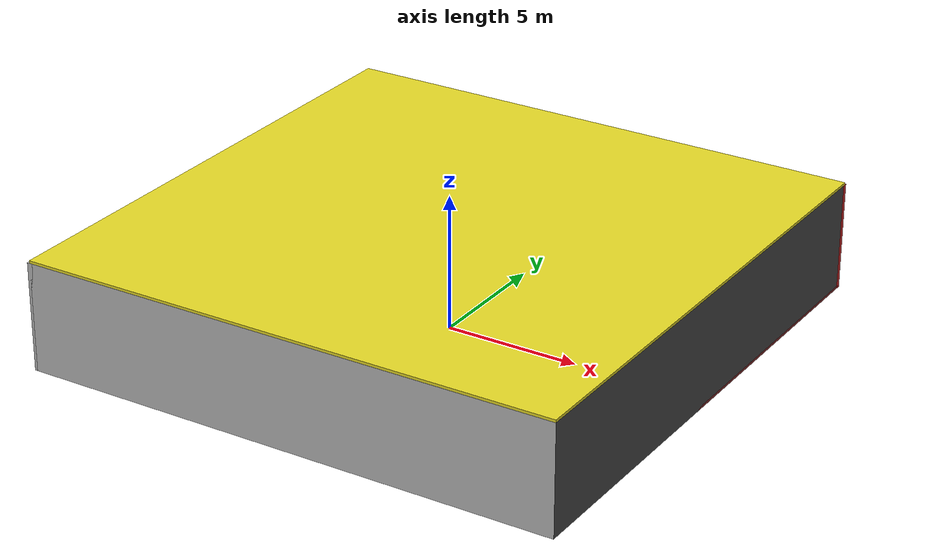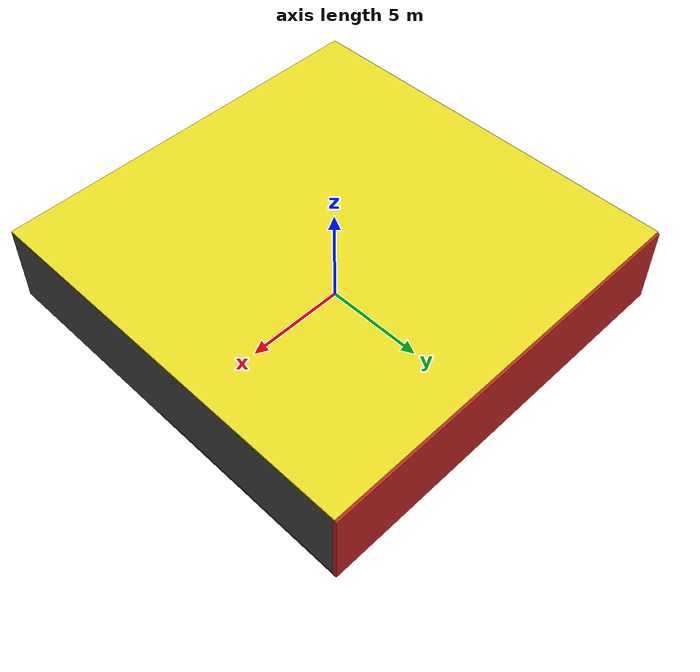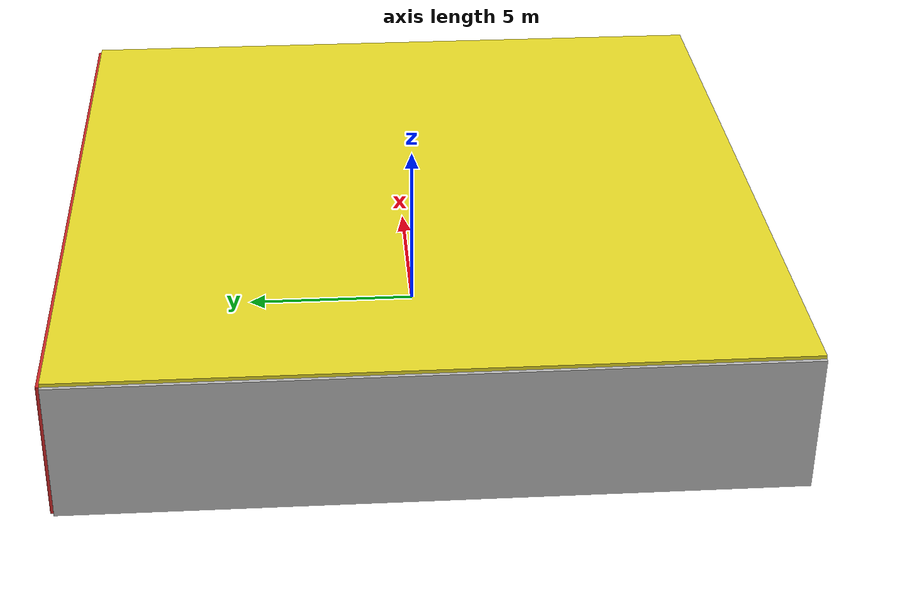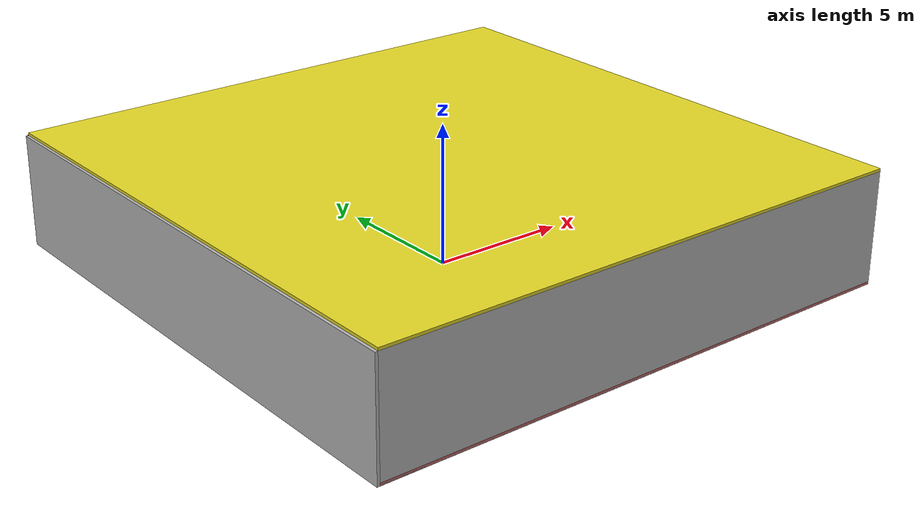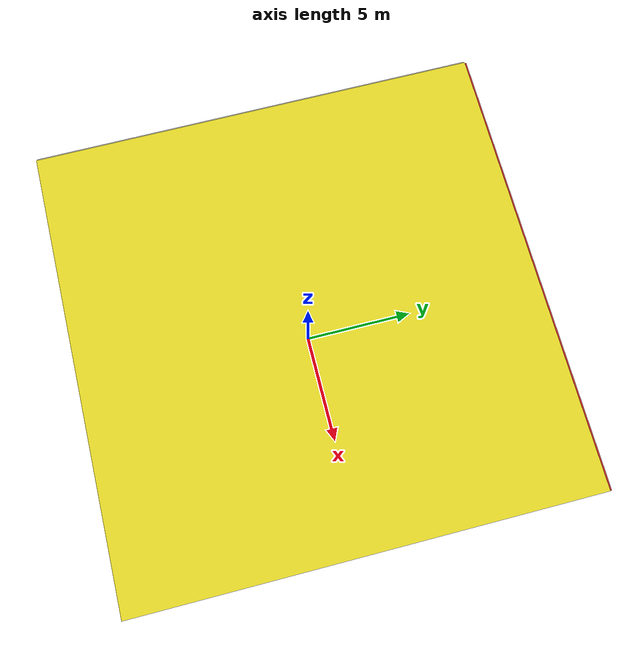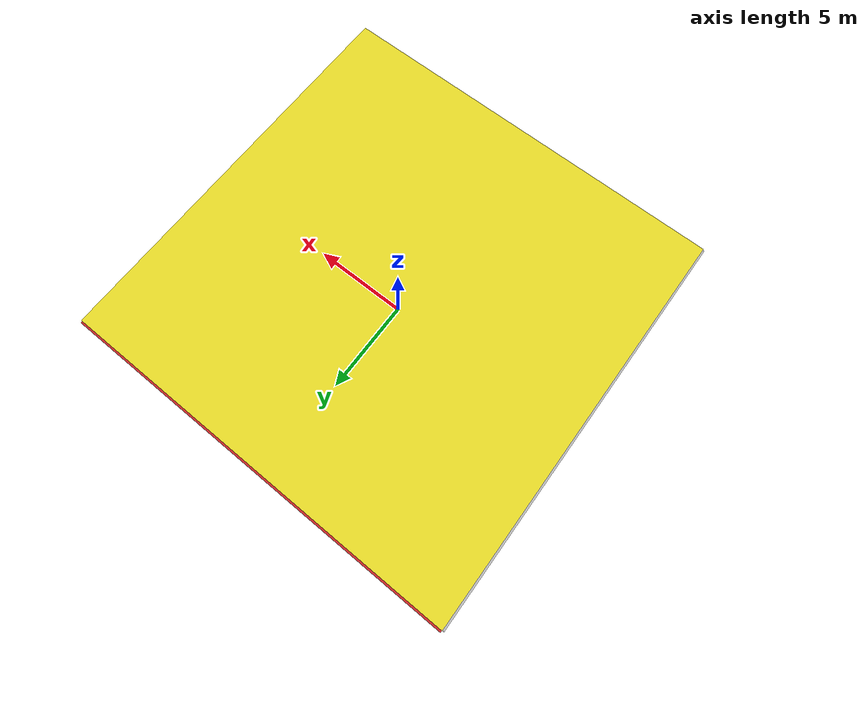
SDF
<sdf version="1.4">
 <world name="default">
  <physics type="ode">
   <max_step_size>0.001</max_step_size>
   <real_time_factor>1</real_time_factor>
   <real_time_update_rate>1000</real_time_update_rate>
   <gravity>0 0 -9.8</gravity>
  </physics>
  <scene><ambient>0.4 0.4 0.4 1</ambient><background>0.7 0.7 0.7 1</background><shadows>1</shadows></scene>
  <model name="Surrounding">
   <static>1</static>
   <link name="Ceiling">
    <collision name="Ceiling_Collision"><geometry><box><size>20 20 0.1</size></box></geometry></collision>
    <visual name="Ceiling_Visual">
     <geometry><box><size>20 20 0.1</size></box></geometry>
     <material>
      <script><uri>file://media/materials/scripts/gazebo.material</uri><name>Gazebo/Yellow</name></script>
     </material>
    </visual>
    <pose>0 0 4.05 0 0 0</pose>
   </link>
   <link name="Wall_South">
    <collision name="Wall_South_Collision">
     <geometry><box><size>20 0 4</size></box></geometry>
     <pose>0 0 2 0 -0 0</pose>
    </collision>
    <visual name="Wall_South_Visual">
     <pose>0 0 2 0 -0 0</pose>
     <geometry><box><size>20 0 4</size></box></geometry>
     <material>
      <script><uri>file://media/materials/scripts/gazebo.material</uri><name>Gazebo/LightOn</name></script>
     </material>
    </visual>
    <velocity_decay><linear>0</linear><angular>0</angular></velocity_decay>
    <pose>0 -10 0 0 -0 0</pose>
   </link>
   <link name="Wall_East">
    <collision name="Wall_21_Collision">
     <geometry><box><size>20 0 4</size></box></geometry>
     <pose>0 0 2 0 -0 0</pose>
    </collision>
    <visual name="Wall_21_Visual">
     <pose>0 0 2 0 -0 0</pose>
     <geometry><box><size>20 0 4</size></box></geometry>
     <material>
      <script><uri>file://media/materials/scripts/gazebo.material</uri><name>Gazebo/Road</name></script>
     </material>
    </visual>
    <velocity_decay><linear>0</linear><angular>0</angular></velocity_decay>
    <pose>10 0 0 0 -0 1.5708</pose>
   </link>
   <link name="Wall_North">
    <collision name="Wall_22_Collision">
     <geometry><box><size>20 0.2 4</size></box></geometry>
     <pose>0 0 2 0 -0 0</pose>
    </collision>
    <visual name="Wall_22_Visual">
     <pose>0 0 2 0 -0 0</pose>
     <geometry><box><size>20 0.2 4</size></box></geometry>
     <material>
      <script><uri>file://media/materials/scripts/gazebo.material</uri><name>Gazebo/RedBright</name></script>
     </material>
    </visual>
    <velocity_decay><linear>0</linear><angular>0</angular></velocity_decay>
    <pose>0 10 0 0 -0 0</pose>
   </link>
   <link name="Wall_West">
    <collision name="Wall_23_Collision">
     <geometry><box><size>20 0.2 4</size></box></geometry>
     <pose>0 0 2 0 -0 0</pose>
    </collision>
    <visual name="Wall_23_Visual">
     <pose>0 0 2 0 -0 0</pose>
     <geometry><box><size>20 0.2 4</size></box></geometry>
     <material>
      <script><uri>file://media/materials/scripts/gazebo.material</uri><name>Gazebo/CloudySky</name></script>
     </material>
    </visual>
    <velocity_decay><linear>0</linear><angular>0</angular></velocity_decay>
    <pose>-10 0 0 0 0 -1.5708</pose>
   </link>
   <link name="Ground_link">
    <collision name="collision">
     <pose>0 0 .05 0 -0 0</pose>
     <geometry><box><size>20 20 0.1</size></box></geometry>
    </collision>
    <visual name="visual">
     <pose>0 0 .05 0 -0 0</pose>
     <geometry><box><size>20 20 0.1</size></box></geometry>
     <material>
      <script><uri>file://media/materials/scripts/gazebo.material</uri><name>Gazebo/RedTransparent</name></script>
     </material>
    </visual>
   </link>
   <static>1</static>
  </model>
  <spherical_coordinates>
   <surface_model>EARTH_WGS84</surface_model>
   <latitude_deg>0</latitude_deg>
   <longitude_deg>0</longitude_deg>
   <elevation>0</elevation>
   <heading_deg>0</heading_deg>
  </spherical_coordinates>
  <light name="lightball_0" type="diffuse">
   <diffuse>0.8 0.8 0.8 1</diffuse>
   <specular>0.2 0.2 0.2 1</specular>
   <attenuation>
    <range>100</range>
    <constant>0.7</constant>
    <linear>0.01</linear>
    <quadratic>0.001</quadratic>
   </attenuation>
   <direction>-0.5 0.1 -0.9</direction>
   <pose>7.95205095112 -0.656566955282 3.18370761605 0 0 0</pose>
  </light>
  <light name="lightball_1" type="diffuse">
   <diffuse>0.8 0.8 0.8 1</diffuse>
   <specular>0.2 0.2 0.2 1</specular>
   <attenuation>
    <range>100</range>
    <constant>0.7</constant>
    <linear>0.01</linear>
    <quadratic>0.001</quadratic>
   </attenuation>
   <direction>-0.5 0.1 -0.9</direction>
   <pose>-8.91964605335 2.26561534436 1.17956944749 0 0 0</pose>
  </light>
  <light name="lightball_2" type="diffuse">
   <diffuse>0.8 0.8 0.8 1</diffuse>
   <specular>0.2 0.2 0.2 1</specular>
   <attenuation>
    <range>100</range>
    <constant>0.7</constant>
    <linear>0.01</linear>
    <quadratic>0.001</quadratic>
   </attenuation>
   <direction>-0.5 0.1 -0.9</direction>
   <pose>-7.67945116163 -3.45463971166 1.05939284984 0 0 0</pose>
  </light>
  <light name="lightball_3" type="diffuse">
   <diffuse>0.8 0.8 0.8 1</diffuse>
   <specular>0.2 0.2 0.2 1</specular>
   <attenuation>
    <range>100</range>
    <constant>0.7</constant>
    <linear>0.01</linear>
    <quadratic>0.001</quadratic>
   </attenuation>
   <direction>-0.5 0.1 -0.9</direction>
   <pose>-1.17367360791 -1.08262904518 1.42956231584 0 0 0</pose>
  </light>
  <light name="lightball_4" type="diffuse">
   <diffuse>0.8 0.8 0.8 1</diffuse>
   <specular>0.2 0.2 0.2 1</specular>
   <attenuation>
    <range>100</range>
    <constant>0.7</constant>
    <linear>0.01</linear>
    <quadratic>0.001</quadratic>
   </attenuation>
   <direction>-0.5 0.1 -0.9</direction>
   <pose>-2.3149299104 1.97839894828 2.94975382283 0 0 0</pose>
  </light>
  <light name="lightball_5" type="diffuse">
   <diffuse>0.8 0.8 0.8 1</diffuse>
   <specular>0.2 0.2 0.2 1</specular>
   <attenuation>
    <range>100</range>
    <constant>0.7</constant>
    <linear>0.01</linear>
    <quadratic>0.001</quadratic>
   </attenuation>
   <direction>-0.5 0.1 -0.9</direction>
   <pose>9.12209466945 4.20347321785 3.10670720197 0 0 0</pose>
  </light>
  <light name="lightball_6" type="diffuse">
   <diffuse>0.8 0.8 0.8 1</diffuse>
   <specular>0.2 0.2 0.2 1</specular>
   <attenuation>
    <range>100</range>
    <constant>0.7</constant>
    <linear>0.01</linear>
    <quadratic>0.001</quadratic>
   </attenuation>
   <direction>-0.5 0.1 -0.9</direction>
   <pose>-3.34763973369 -8.85520492667 2.08123128772 0 0 0</pose>
  </light>
  <light name="lightball_7" type="diffuse">
   <diffuse>0.8 0.8 0.8 1</diffuse>
   <specular>0.2 0.2 0.2 1</specular>
   <attenuation>
    <range>100</range>
    <constant>0.7</constant>
    <linear>0.01</linear>
    <quadratic>0.001</quadratic>
   </attenuation>
   <direction>-0.5 0.1 -0.9</direction>
   <pose>-0.00331014049896 9.70404908642 2.23677119669 0 0 0</pose>
  </light>
  <light name="lightball_8" type="diffuse">
   <diffuse>0.8 0.8 0.8 1</diffuse>
   <specular>0.2 0.2 0.2 1</specular>
   <attenuation>
    <range>100</range>
    <constant>0.7</constant>
    <linear>0.01</linear>
    <quadratic>0.001</quadratic>
   </attenuation>
   <direction>-0.5 0.1 -0.9</direction>
   <pose>-8.65011948107 4.3572754086 0.749337508861 0 0 0</pose>
  </light>
  <light name="lightball_9" type="diffuse">
   <diffuse>0.8 0.8 0.8 1</diffuse>
   <specular>0.2 0.2 0.2 1</specular>
   <attenuation>
    <range>100</range>
    <constant>0.7</constant>
    <linear>0.01</linear>
    <quadratic>0.001</quadratic>
   </attenuation>
   <direction>-0.5 0.1 -0.9</direction>
   <pose>-8.79632901786 4.64495754327 2.26037795392 0 0 0</pose>
  </light>
  <light name="lightball_10" type="diffuse">
   <diffuse>0.8 0.8 0.8 1</diffuse>
   <specular>0.2 0.2 0.2 1</specular>
   <attenuation>
    <range>100</range>
    <constant>0.7</constant>
    <linear>0.01</linear>
    <quadratic>0.001</quadratic>
   </attenuation>
   <direction>-0.5 0.1 -0.9</direction>
   <pose>-7.14357485059 -0.187403542162 2.91390481919 0 0 0</pose>
  </light>
  <light name="lightball_11" type="diffuse">
   <diffuse>0.8 0.8 0.8 1</diffuse>
   <specular>0.2 0.2 0.2 1</specular>
   <attenuation>
    <range>100</range>
    <constant>0.7</constant>
    <linear>0.01</linear>
    <quadratic>0.001</quadratic>
   </attenuation>
   <direction>-0.5 0.1 -0.9</direction>
   <pose>0.357939885448 1.61203950485 1.21954680564 0 0 0</pose>
  </light>
  <include><uri>model://table</uri><pose>-4.1052837479 -8.09046870384 0 0 0 0.142461810501</pose></include>
  <include><uri>model://cabinet</uri><pose>-1.79347025964 -5.06968352608 0 0 0 2.35232878256</pose></include>
  <include><uri>model://table</uri><pose>0.988973600101 -7.42581367508 0 0 0 0.550344452052</pose></include>
 </world>
</sdf>

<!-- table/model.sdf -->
<sdf version="1.5">
  <model name="table">
    <static>true</static>
    <link name="link">
      <collision name="surface">
        <pose>0 0 1.0 0 0 0</pose>
        <geometry>
          <box>
            <size>1.5 0.8 0.03</size>
          </box>
        </geometry>
        <surface>
          <friction>
            <ode>
              <mu>0.6</mu>
              <mu2>0.6</mu2>
            </ode>
          </friction>
        </surface>
      </collision>
      <visual name="visual1">
        <pose>0 0 1.0 0 0 0</pose>
        <geometry>
          <box>
            <size>1.5 0.8 0.03</size>
          </box>
        </geometry>
        <material>
          <script>
            <uri>model://media/materials/scripts/gazebo.material</uri>
            <name>Gazebo/Wood</name>
          </script>
        </material>
      </visual>
      <collision name="front_left_leg">
        <pose>0.68 0.38 0.5 0 0 0</pose>
        <geometry>
          <cylinder>
            <radius>0.02</radius>
            <length>1.0</length>
          </cylinder>
        </geometry>
      </collision>
      <visual name="front_left_leg">
        <pose>0.68 0.38 0.5 0 0 0</pose>
        <geometry>
          <cylinder>
            <radius>0.02</radius>
            <length>1.0</length>
          </cylinder>
        </geometry>
        <material>
          <script>
            <uri>model://media/materials/scripts/gazebo.material</uri>
            <name>Gazebo/Grey</name>
          </script>
        </material>
      </visual>
      <collision name="front_right_leg">
        <pose>0.68 -0.38 0.5 0 0 0</pose>
        <geometry>
          <cylinder>
            <radius>0.02</radius>
            <length>1.0</length>
          </cylinder>
        </geometry>
      </collision>
      <visual name="front_right_leg">
        <pose>0.68 -0.38 0.5 0 0 0</pose>
        <geometry>
          <cylinder>
            <radius>0.02</radius>
            <length>1.0</length>
          </cylinder>
        </geometry>
        <material>
          <script>
            <uri>model://media/materials/scripts/gazebo.material</uri>
            <name>Gazebo/Grey</name>
          </script>
        </material>
      </visual>
      <collision name="back_right_leg">
        <pose>-0.68 -0.38 0.5 0 0 0</pose>
        <geometry>
          <cylinder>
            <radius>0.02</radius>
            <length>1.0</length>
          </cylinder>
        </geometry>
      </collision>
      <visual name="back_right_leg">
        <pose>-0.68 -0.38 0.5 0 0 0</pose>
        <geometry>
          <cylinder>
            <radius>0.02</radius>
            <length>1.0</length>
          </cylinder>
        </geometry>
        <material>
          <script>
            <uri>model://media/materials/scripts/gazebo.material</uri>
            <name>Gazebo/Grey</name>
          </script>
        </material>
      </visual>
      <collision name="back_left_leg">
        <pose>-0.68 0.38 0.5 0 0 0</pose>
        <geometry>
          <cylinder>
            <radius>0.02</radius>
            <length>1.0</length>
          </cylinder>
        </geometry>
      </collision>
      <visual name="back_left_leg">
        <pose>-0.68 0.38 0.5 0 0 0</pose>
        <geometry>
          <cylinder>
            <radius>0.02</radius>
            <length>1.0</length>
          </cylinder>
        </geometry>
        <material>
          <script>
            <uri>model://media/materials/scripts/gazebo.material</uri>
            <name>Gazebo/Grey</name>
          </script>
        </material>
      </visual>
    </link>
  </model>
</sdf>

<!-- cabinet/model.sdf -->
<sdf version="1.5">
  <model name="cabinet">
    <static>true</static>
    <link name="cabinet_bottom_plate">
      <inertial>
        <pose>0 0 -1 0 0 0</pose>
        <inertia>
          <ixx>2.050000</ixx>
          <ixy>0</ixy>
          <ixz>0</ixz>
          <iyy>2.050000</iyy>
          <iyz>0</iyz>
          <izz>2.050000</izz>
        </inertia>
        <mass>25.000000</mass>
      </inertial>
      <collision name="cabinet_bottom_plate_geom">
        <pose>0 0 0.010000 0 0 0</pose>
        <geometry>
          <box>
            <size>0.450000 0.450000 0.020000</size>
          </box>
        </geometry>
      </collision>
      <visual name="cabinet_bottom_plate_geom_visual">
        <pose>0 0 0.010000 0 0 0</pose>
        <geometry>
          <box>
            <size>0.450000 0.450000 0.020000</size>
          </box>
        </geometry>
        <material>
          <script>
            <uri>model://media/materials/scripts/gazebo.material</uri>
            <name>Gazebo/Wood</name>
          </script>
        </material>
      </visual>
      <collision name="cabinet_bottom_plate_geom_cabinet_back_plate">
        <pose>0.235000 0 0.510000 0 0 0</pose>
        <geometry>
          <box>
            <size>0.020000 0.450000 1.020000</size>
          </box>
        </geometry>
      </collision>
      <visual name="cabinet_bottom_plate_geom_cabinet_back_plate_visual">
        <pose>0.235000 0 0.510000 0 0 0</pose>
        <geometry>
          <box>
            <size>0.020000 0.450000 1.020000</size>
          </box>
        </geometry>
        <material>
          <script>
            <uri>model://media/materials/scripts/gazebo.material</uri>
            <name>Gazebo/Wood</name>
          </script>
        </material>
      </visual>
      <collision name="cabinet_bottom_plate_geom_cabinet_left_plate">
        <pose>0 0.235000 0.510000 0 0 0</pose>
        <geometry>
          <box>
            <size>0.450000 0.020000 1.020000</size>
          </box>
        </geometry>
      </collision>
      <visual name="cabinet_bottom_plate_geom_cabinet_left_plate_visual">
        <pose>0 0.235000 0.510000 0 0 0</pose>
        <geometry>
          <box>
            <size>0.450000 0.020000 1.020000</size>
          </box>
        </geometry>
        <material>
          <script>
            <uri>model://media/materials/scripts/gazebo.material</uri>
            <name>Gazebo/Wood</name>
          </script>
        </material>
      </visual>
      <collision name="cabinet_bottom_plate_geom_cabinet_middle_plate">
        <pose>0 0 0.510000 0 0 0</pose>
        <geometry>
          <box>
            <size>0.450000 0.450000 0.020000</size>
          </box>
        </geometry>
      </collision>
      <visual name="cabinet_bottom_plate_geom_cabinet_middle_plate_visual">
        <pose>0 0 0.510000 0 0 0</pose>
        <geometry>
          <box>
            <size>0.450000 0.450000 0.020000</size>
          </box>
        </geometry>
        <material>
          <script>
            <uri>model://media/materials/scripts/gazebo.material</uri>
            <name>Gazebo/Wood</name>
          </script>
        </material>
      </visual>
      <collision name="cabinet_bottom_plate_geom_cabinet_right_plate">
        <pose>0 -0.235000 0.510000 0 0 0</pose>
        <geometry>
          <box>
            <size>0.450000 0.020000 1.020000</size>
          </box>
        </geometry>
      </collision>
      <visual name="cabinet_bottom_plate_geom_cabinet_right_plate_visual">
        <pose>0 -0.235000 0.510000 0 0 0</pose>
        <geometry>
          <box>
            <size>0.450000 0.020000 1.020000</size>
          </box>
        </geometry>
        <material>
          <script>
            <uri>model://media/materials/scripts/gazebo.material</uri>
            <name>Gazebo/Wood</name>
          </script>
        </material>
      </visual>
      <collision name="cabinet_bottom_plate_geom_cabinet_top_plate">
        <pose>0 0 1.010000 0 0 0</pose>
        <geometry>
          <box>
            <size>0.450000 0.450000 0.020000</size>
          </box>
        </geometry>
      </collision>
      <visual name="cabinet_bottom_plate_geom_cabinet_top_plate_visual">
        <pose>0 0 1.010000 0 0 0</pose>
        <geometry>
          <box>
            <size>0.450000 0.450000 0.020000</size>
          </box>
        </geometry>
        <material>
          <script>
            <uri>model://media/materials/scripts/gazebo.material</uri>
            <name>Gazebo/Wood</name>
          </script>
        </material>
      </visual>
    </link>
  </model>
</sdf>
